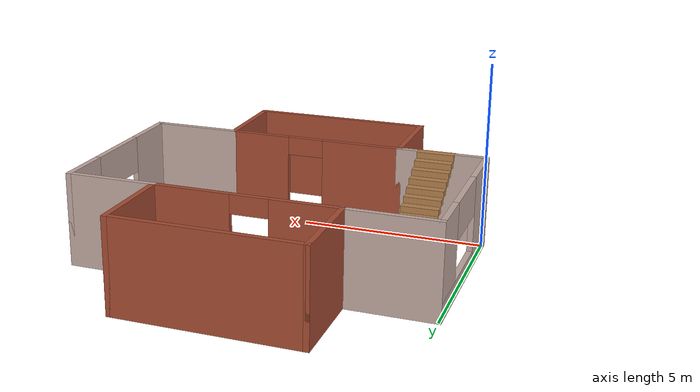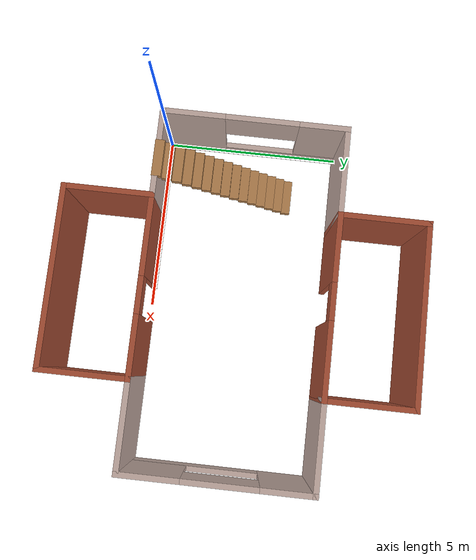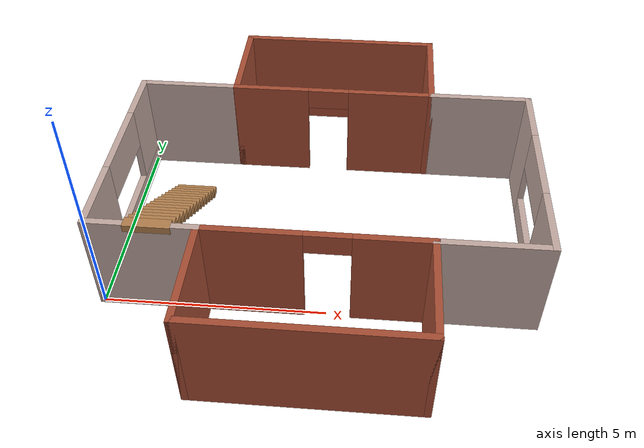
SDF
<?xml version='1.0'?>
<sdf version='1.6'>
  <model name='Building'>
    <pose frame=''>4.775 2.5 0 0 -0 0</pose>
    <link name='Stairs_0'>
      <visual name='Stairs_0_Visual_0'>
        <pose frame=''>-3.44318 1.16428 0.083333 0 -0 0</pose>
        <geometry>
          <box>
            <size>1 0.259131 0.166667</size>
          </box>
        </geometry>
        <material>
          <script>
            <uri>file://media/materials/scripts/gazebo.material</uri>
            <name>Gazebo/Wood</name>
          </script>
          <ambient>1 1 1 1</ambient>
        </material>
        <meta>
          <layer>0</layer>
        </meta>
      </visual>
      <collision name='Stairs_0_Collision_0'>
        <geometry>
          <box>
            <size>1 0.259131 0.166667</size>
          </box>
        </geometry>
        <pose frame=''>-3.44318 1.16428 0.083333 0 -0 0</pose>
      </collision>
      <visual name='Stairs_0_Visual_1'>
        <pose frame=''>-3.44318 0.905145 0.25 0 -0 0</pose>
        <geometry>
          <box>
            <size>1 0.259131 0.166667</size>
          </box>
        </geometry>
        <material>
          <script>
            <uri>file://media/materials/scripts/gazebo.material</uri>
            <name>Gazebo/Wood</name>
          </script>
          <ambient>1 1 1 1</ambient>
        </material>
        <meta>
          <layer>0</layer>
        </meta>
      </visual>
      <collision name='Stairs_0_Collision_1'>
        <geometry>
          <box>
            <size>1 0.259131 0.166667</size>
          </box>
        </geometry>
        <pose frame=''>-3.44318 0.905145 0.25 0 -0 0</pose>
      </collision>
      <visual name='Stairs_0_Visual_2'>
        <pose frame=''>-3.44318 0.646014 0.416667 0 -0 0</pose>
        <geometry>
          <box>
            <size>1 0.259131 0.166667</size>
          </box>
        </geometry>
        <material>
          <script>
            <uri>file://media/materials/scripts/gazebo.material</uri>
            <name>Gazebo/Wood</name>
          </script>
          <ambient>1 1 1 1</ambient>
        </material>
        <meta>
          <layer>0</layer>
        </meta>
      </visual>
      <collision name='Stairs_0_Collision_2'>
        <geometry>
          <box>
            <size>1 0.259131 0.166667</size>
          </box>
        </geometry>
        <pose frame=''>-3.44318 0.646014 0.416667 0 -0 0</pose>
      </collision>
      <visual name='Stairs_0_Visual_3'>
        <pose frame=''>-3.44318 0.386883 0.583333 0 -0 0</pose>
        <geometry>
          <box>
            <size>1 0.259131 0.166667</size>
          </box>
        </geometry>
        <material>
          <script>
            <uri>file://media/materials/scripts/gazebo.material</uri>
            <name>Gazebo/Wood</name>
          </script>
          <ambient>1 1 1 1</ambient>
        </material>
        <meta>
          <layer>0</layer>
        </meta>
      </visual>
      <collision name='Stairs_0_Collision_3'>
        <geometry>
          <box>
            <size>1 0.259131 0.166667</size>
          </box>
        </geometry>
        <pose frame=''>-3.44318 0.386883 0.583333 0 -0 0</pose>
      </collision>
      <visual name='Stairs_0_Visual_4'>
        <pose frame=''>-3.44318 0.127752 0.75 0 -0 0</pose>
        <geometry>
          <box>
            <size>1 0.259131 0.166667</size>
          </box>
        </geometry>
        <material>
          <script>
            <uri>file://media/materials/scripts/gazebo.material</uri>
            <name>Gazebo/Wood</name>
          </script>
          <ambient>1 1 1 1</ambient>
        </material>
        <meta>
          <layer>0</layer>
        </meta>
      </visual>
      <collision name='Stairs_0_Collision_4'>
        <geometry>
          <box>
            <size>1 0.259131 0.166667</size>
          </box>
        </geometry>
        <pose frame=''>-3.44318 0.127752 0.75 0 -0 0</pose>
      </collision>
      <visual name='Stairs_0_Visual_5'>
        <pose frame=''>-3.44318 -0.131379 0.916667 0 -0 0</pose>
        <geometry>
          <box>
            <size>1 0.259131 0.166667</size>
          </box>
        </geometry>
        <material>
          <script>
            <uri>file://media/materials/scripts/gazebo.material</uri>
            <name>Gazebo/Wood</name>
          </script>
          <ambient>1 1 1 1</ambient>
        </material>
        <meta>
          <layer>0</layer>
        </meta>
      </visual>
      <collision name='Stairs_0_Collision_5'>
        <geometry>
          <box>
            <size>1 0.259131 0.166667</size>
          </box>
        </geometry>
        <pose frame=''>-3.44318 -0.131379 0.916667 0 -0 0</pose>
      </collision>
      <visual name='Stairs_0_Visual_6'>
        <pose frame=''>-3.44318 -0.390511 1.08333 0 -0 0</pose>
        <geometry>
          <box>
            <size>1 0.259131 0.166667</size>
          </box>
        </geometry>
        <material>
          <script>
            <uri>file://media/materials/scripts/gazebo.material</uri>
            <name>Gazebo/Wood</name>
          </script>
          <ambient>1 1 1 1</ambient>
        </material>
        <meta>
          <layer>0</layer>
        </meta>
      </visual>
      <collision name='Stairs_0_Collision_6'>
        <geometry>
          <box>
            <size>1 0.259131 0.166667</size>
          </box>
        </geometry>
        <pose frame=''>-3.44318 -0.390511 1.08333 0 -0 0</pose>
      </collision>
      <visual name='Stairs_0_Visual_7'>
        <pose frame=''>-3.44318 -0.649642 1.25 0 -0 0</pose>
        <geometry>
          <box>
            <size>1 0.259131 0.166667</size>
          </box>
        </geometry>
        <material>
          <script>
            <uri>file://media/materials/scripts/gazebo.material</uri>
            <name>Gazebo/Wood</name>
          </script>
          <ambient>1 1 1 1</ambient>
        </material>
        <meta>
          <layer>0</layer>
        </meta>
      </visual>
      <collision name='Stairs_0_Collision_7'>
        <geometry>
          <box>
            <size>1 0.259131 0.166667</size>
          </box>
        </geometry>
        <pose frame=''>-3.44318 -0.649642 1.25 0 -0 0</pose>
      </collision>
      <visual name='Stairs_0_Visual_8'>
        <pose frame=''>-3.44318 -0.908773 1.41667 0 -0 0</pose>
        <geometry>
          <box>
            <size>1 0.259131 0.166667</size>
          </box>
        </geometry>
        <material>
          <script>
            <uri>file://media/materials/scripts/gazebo.material</uri>
            <name>Gazebo/Wood</name>
          </script>
          <ambient>1 1 1 1</ambient>
        </material>
        <meta>
          <layer>0</layer>
        </meta>
      </visual>
      <collision name='Stairs_0_Collision_8'>
        <geometry>
          <box>
            <size>1 0.259131 0.166667</size>
          </box>
        </geometry>
        <pose frame=''>-3.44318 -0.908773 1.41667 0 -0 0</pose>
      </collision>
      <visual name='Stairs_0_Visual_9'>
        <pose frame=''>-3.44318 -1.1679 1.58333 0 -0 0</pose>
        <geometry>
          <box>
            <size>1 0.259131 0.166667</size>
          </box>
        </geometry>
        <material>
          <script>
            <uri>file://media/materials/scripts/gazebo.material</uri>
            <name>Gazebo/Wood</name>
          </script>
          <ambient>1 1 1 1</ambient>
        </material>
        <meta>
          <layer>0</layer>
        </meta>
      </visual>
      <collision name='Stairs_0_Collision_9'>
        <geometry>
          <box>
            <size>1 0.259131 0.166667</size>
          </box>
        </geometry>
        <pose frame=''>-3.44318 -1.1679 1.58333 0 -0 0</pose>
      </collision>
      <visual name='Stairs_0_Visual_10'>
        <pose frame=''>-3.44318 -1.42704 1.75 0 -0 0</pose>
        <geometry>
          <box>
            <size>1 0.259131 0.166667</size>
          </box>
        </geometry>
        <material>
          <script>
            <uri>file://media/materials/scripts/gazebo.material</uri>
            <name>Gazebo/Wood</name>
          </script>
          <ambient>1 1 1 1</ambient>
        </material>
        <meta>
          <layer>0</layer>
        </meta>
      </visual>
      <collision name='Stairs_0_Collision_10'>
        <geometry>
          <box>
            <size>1 0.259131 0.166667</size>
          </box>
        </geometry>
        <pose frame=''>-3.44318 -1.42704 1.75 0 -0 0</pose>
      </collision>
      <visual name='Stairs_0_Visual_11'>
        <pose frame=''>-3.44318 -1.68617 1.91667 0 -0 0</pose>
        <geometry>
          <box>
            <size>1 0.259131 0.166667</size>
          </box>
        </geometry>
        <material>
          <script>
            <uri>file://media/materials/scripts/gazebo.material</uri>
            <name>Gazebo/Wood</name>
          </script>
          <ambient>1 1 1 1</ambient>
        </material>
        <meta>
          <layer>0</layer>
        </meta>
      </visual>
      <collision name='Stairs_0_Collision_11'>
        <geometry>
          <box>
            <size>1 0.259131 0.166667</size>
          </box>
        </geometry>
        <pose frame=''>-3.44318 -1.68617 1.91667 0 -0 0</pose>
      </collision>
      <visual name='Stairs_0_Visual_12'>
        <pose frame=''>-3.44318 -1.9453 2.08333 0 -0 0</pose>
        <geometry>
          <box>
            <size>1 0.259131 0.166667</size>
          </box>
        </geometry>
        <material>
          <script>
            <uri>file://media/materials/scripts/gazebo.material</uri>
            <name>Gazebo/Wood</name>
          </script>
          <ambient>1 1 1 1</ambient>
        </material>
        <meta>
          <layer>0</layer>
        </meta>
      </visual>
      <collision name='Stairs_0_Collision_12'>
        <geometry>
          <box>
            <size>1 0.259131 0.166667</size>
          </box>
        </geometry>
        <pose frame=''>-3.44318 -1.9453 2.08333 0 -0 0</pose>
      </collision>
      <visual name='Stairs_0_Visual_13'>
        <pose frame=''>-3.44318 -2.20443 2.25 0 -0 0</pose>
        <geometry>
          <box>
            <size>1 0.259131 0.166667</size>
          </box>
        </geometry>
        <material>
          <script>
            <uri>file://media/materials/scripts/gazebo.material</uri>
            <name>Gazebo/Wood</name>
          </script>
          <ambient>1 1 1 1</ambient>
        </material>
        <meta>
          <layer>0</layer>
        </meta>
      </visual>
      <collision name='Stairs_0_Collision_13'>
        <geometry>
          <box>
            <size>1 0.259131 0.166667</size>
          </box>
        </geometry>
        <pose frame=''>-3.44318 -2.20443 2.25 0 -0 0</pose>
      </collision>
      <visual name='Stairs_0_Visual_14'>
        <pose frame=''>-3.44318 -2.46356 2.41667 0 -0 0</pose>
        <geometry>
          <box>
            <size>1 0.259131 0.166667</size>
          </box>
        </geometry>
        <material>
          <script>
            <uri>file://media/materials/scripts/gazebo.material</uri>
            <name>Gazebo/Wood</name>
          </script>
          <ambient>1 1 1 1</ambient>
        </material>
        <meta>
          <layer>0</layer>
        </meta>
      </visual>
      <collision name='Stairs_0_Collision_14'>
        <geometry>
          <box>
            <size>1 0.259131 0.166667</size>
          </box>
        </geometry>
        <pose frame=''>-3.44318 -2.46356 2.41667 0 -0 0</pose>
      </collision>
    </link>
    <link name='Wall_10'>
      <collision name='Wall_10_Collision'>
        <geometry>
          <box>
            <size>2.5 0.15 2.5</size>
          </box>
        </geometry>
        <pose frame=''>0 0 1.25 0 -0 0</pose>
      </collision>
      <visual name='Wall_10_Visual'>
        <pose frame=''>0 0 1.25 0 -0 0</pose>
        <geometry>
          <box>
            <size>2.5 0.15 2.5</size>
          </box>
        </geometry>
        <material>
          <script>
            <uri>file://media/materials/scripts/gazebo.material</uri>
            <name>Gazebo/Bricks</name>
          </script>
          <ambient>1 1 1 1</ambient>
        </material>
        <meta>
          <layer>0</layer>
        </meta>
      </visual>
      <pose frame=''>-2.425 3.675 0 0 -0 1.5708</pose>
    </link>
    <link name='Wall_12'>
      <collision name='Wall_12_Collision'>
        <geometry>
          <box>
            <size>5 0.15 2.5</size>
          </box>
        </geometry>
        <pose frame=''>0 0 1.25 0 -0 0</pose>
      </collision>
      <visual name='Wall_12_Visual'>
        <pose frame=''>0 0 1.25 0 -0 0</pose>
        <geometry>
          <box>
            <size>5 0.15 2.5</size>
          </box>
        </geometry>
        <material>
          <script>
            <uri>file://media/materials/scripts/gazebo.material</uri>
            <name>Gazebo/Bricks</name>
          </script>
          <ambient>1 1 1 1</ambient>
        </material>
        <meta>
          <layer>0</layer>
        </meta>
      </visual>
      <pose frame=''>0 4.85 0 0 -0 0</pose>
    </link>
    <link name='Wall_14'>
      <collision name='Wall_14_Collision'>
        <geometry>
          <box>
            <size>2.5 0.15 2.5</size>
          </box>
        </geometry>
        <pose frame=''>0 0 1.25 0 -0 0</pose>
      </collision>
      <visual name='Wall_14_Visual'>
        <pose frame=''>0 0 1.25 0 -0 0</pose>
        <geometry>
          <box>
            <size>2.5 0.15 2.5</size>
          </box>
        </geometry>
        <material>
          <script>
            <uri>file://media/materials/scripts/gazebo.material</uri>
            <name>Gazebo/Bricks</name>
          </script>
          <ambient>1 1 1 1</ambient>
        </material>
        <meta>
          <layer>0</layer>
        </meta>
      </visual>
      <pose frame=''>2.425 3.675 0 0 0 -1.5708</pose>
    </link>
    <link name='Wall_15'>
      <collision name='Wall_15_Collision'>
        <geometry>
          <box>
            <size>2.5 0.15 2.5</size>
          </box>
        </geometry>
        <pose frame=''>0 0 1.25 0 -0 0</pose>
      </collision>
      <visual name='Wall_15_Visual'>
        <pose frame=''>0 0 1.25 0 -0 0</pose>
        <geometry>
          <box>
            <size>2.5 0.15 2.5</size>
          </box>
        </geometry>
        <material>
          <script>
            <uri>file://media/materials/scripts/gazebo.material</uri>
            <name>Gazebo/Grey</name>
          </script>
          <ambient>0.760784 0.662745 0.627451 1</ambient>
        </material>
        <meta>
          <layer>0</layer>
        </meta>
      </visual>
      <pose frame=''>3.6 2.5 0 0 -0 0</pose>
    </link>
    <link name='Wall_16'>
      <pose frame=''>4.775 0 0 0 0 -1.5708</pose>
      <visual name='Wall_16_Visual_0'>
        <pose frame=''>-1.8385 0 1.25 0 -0 0</pose>
        <geometry>
          <box>
            <size>1.473 0.15 2.5</size>
          </box>
        </geometry>
        <material>
          <script>
            <uri>file://media/materials/scripts/gazebo.material</uri>
            <name>Gazebo/Grey</name>
          </script>
          <ambient>0.760784 0.662745 0.627451 1</ambient>
        </material>
        <meta>
          <layer>0</layer>
        </meta>
      </visual>
      <collision name='Wall_16_Collision_0'>
        <geometry>
          <box>
            <size>1.473 0.15 2.5</size>
          </box>
        </geometry>
        <pose frame=''>-1.8385 0 1.25 0 -0 0</pose>
      </collision>
      <visual name='Wall_16_Visual_1'>
        <pose frame=''>0.7365 0 0.25 0 -0 0</pose>
        <geometry>
          <box>
            <size>3.677 0.15 0.5</size>
          </box>
        </geometry>
        <material>
          <script>
            <uri>file://media/materials/scripts/gazebo.material</uri>
            <name>Gazebo/Grey</name>
          </script>
          <ambient>0.760784 0.662745 0.627451 1</ambient>
        </material>
        <meta>
          <layer>0</layer>
        </meta>
      </visual>
      <collision name='Wall_16_Collision_1'>
        <geometry>
          <box>
            <size>3.677 0.15 0.5</size>
          </box>
        </geometry>
        <pose frame=''>0.7365 0 0.25 0 -0 0</pose>
      </collision>
      <visual name='Wall_16_Visual_2'>
        <pose frame=''>1.7365 0 1.5 0 -0 0</pose>
        <geometry>
          <box>
            <size>1.677 0.15 2</size>
          </box>
        </geometry>
        <material>
          <script>
            <uri>file://media/materials/scripts/gazebo.material</uri>
            <name>Gazebo/Grey</name>
          </script>
          <ambient>0.760784 0.662745 0.627451 1</ambient>
        </material>
        <meta>
          <layer>0</layer>
        </meta>
      </visual>
      <collision name='Wall_16_Collision_2'>
        <geometry>
          <box>
            <size>1.677 0.15 2</size>
          </box>
        </geometry>
        <pose frame=''>1.7365 0 1.5 0 -0 0</pose>
      </collision>
      <visual name='Wall_16_Visual_3'>
        <pose frame=''>-0.102 0 2 0 -0 0</pose>
        <geometry>
          <box>
            <size>2 0.15 1</size>
          </box>
        </geometry>
        <material>
          <script>
            <uri>file://media/materials/scripts/gazebo.material</uri>
            <name>Gazebo/Grey</name>
          </script>
          <ambient>0.760784 0.662745 0.627451 1</ambient>
        </material>
        <meta>
          <layer>0</layer>
        </meta>
      </visual>
      <collision name='Wall_16_Collision_3'>
        <geometry>
          <box>
            <size>2 0.15 1</size>
          </box>
        </geometry>
        <pose frame=''>-0.102 0 2 0 -0 0</pose>
      </collision>
    </link>
    <link name='Wall_18'>
      <collision name='Wall_18_Collision'>
        <geometry>
          <box>
            <size>2.5 0.15 2.5</size>
          </box>
        </geometry>
        <pose frame=''>0 0 1.25 0 -0 0</pose>
      </collision>
      <visual name='Wall_18_Visual'>
        <pose frame=''>0 0 1.25 0 -0 0</pose>
        <geometry>
          <box>
            <size>2.5 0.15 2.5</size>
          </box>
        </geometry>
        <material>
          <script>
            <uri>file://media/materials/scripts/gazebo.material</uri>
            <name>Gazebo/Grey</name>
          </script>
          <ambient>0.760784 0.662745 0.627451 1</ambient>
        </material>
        <meta>
          <layer>0</layer>
        </meta>
      </visual>
      <pose frame=''>-3.6 -2.5 0 0 -0 0</pose>
    </link>
    <link name='Wall_22'>
      <collision name='Wall_22_Collision'>
        <geometry>
          <box>
            <size>2.5 0.15 2.5</size>
          </box>
        </geometry>
        <pose frame=''>0 0 1.25 0 -0 0</pose>
      </collision>
      <visual name='Wall_22_Visual'>
        <pose frame=''>0 0 1.25 0 -0 0</pose>
        <geometry>
          <box>
            <size>2.5 0.15 2.5</size>
          </box>
        </geometry>
        <material>
          <script>
            <uri>file://media/materials/scripts/gazebo.material</uri>
            <name>Gazebo/Bricks</name>
          </script>
          <ambient>1 1 1 1</ambient>
        </material>
        <meta>
          <layer>0</layer>
        </meta>
      </visual>
      <pose frame=''>-2.425 -3.675 0 0 0 -1.5708</pose>
    </link>
    <link name='Wall_23'>
      <collision name='Wall_23_Collision'>
        <geometry>
          <box>
            <size>5 0.15 2.5</size>
          </box>
        </geometry>
        <pose frame=''>0 0 1.25 0 -0 0</pose>
      </collision>
      <visual name='Wall_23_Visual'>
        <pose frame=''>0 0 1.25 0 -0 0</pose>
        <geometry>
          <box>
            <size>5 0.15 2.5</size>
          </box>
        </geometry>
        <material>
          <script>
            <uri>file://media/materials/scripts/gazebo.material</uri>
            <name>Gazebo/Bricks</name>
          </script>
          <ambient>1 1 1 1</ambient>
        </material>
        <meta>
          <layer>0</layer>
        </meta>
      </visual>
      <pose frame=''>0 -4.85 0 0 -0 0</pose>
    </link>
    <link name='Wall_26'>
      <pose frame=''>0 2.5 0 0 -0 0</pose>
      <visual name='Wall_26_Visual_0'>
        <pose frame=''>-1.5607 0 1.25 0 -0 0</pose>
        <geometry>
          <box>
            <size>1.8786 0.15 2.5</size>
          </box>
        </geometry>
        <material>
          <script>
            <uri>file://media/materials/scripts/gazebo.material</uri>
            <name>Gazebo/Bricks</name>
          </script>
          <ambient>1 1 1 1</ambient>
        </material>
        <meta>
          <layer>0</layer>
        </meta>
      </visual>
      <collision name='Wall_26_Collision_0'>
        <geometry>
          <box>
            <size>1.8786 0.15 2.5</size>
          </box>
        </geometry>
        <pose frame=''>-1.5607 0 1.25 0 -0 0</pose>
      </collision>
      <visual name='Wall_26_Visual_1'>
        <pose frame=''>1.4393 0 1.25 0 -0 0</pose>
        <geometry>
          <box>
            <size>2.1214 0.15 2.5</size>
          </box>
        </geometry>
        <material>
          <script>
            <uri>file://media/materials/scripts/gazebo.material</uri>
            <name>Gazebo/Bricks</name>
          </script>
          <ambient>1 1 1 1</ambient>
        </material>
        <meta>
          <layer>0</layer>
        </meta>
      </visual>
      <collision name='Wall_26_Collision_1'>
        <geometry>
          <box>
            <size>2.1214 0.15 2.5</size>
          </box>
        </geometry>
        <pose frame=''>1.4393 0 1.25 0 -0 0</pose>
      </collision>
      <visual name='Wall_26_Visual_2'>
        <pose frame=''>-0.1214 0 2.25 0 -0 0</pose>
        <geometry>
          <box>
            <size>1 0.15 0.5</size>
          </box>
        </geometry>
        <material>
          <script>
            <uri>file://media/materials/scripts/gazebo.material</uri>
            <name>Gazebo/Bricks</name>
          </script>
          <ambient>1 1 1 1</ambient>
        </material>
        <meta>
          <layer>0</layer>
        </meta>
      </visual>
      <collision name='Wall_26_Collision_2'>
        <geometry>
          <box>
            <size>1 0.15 0.5</size>
          </box>
        </geometry>
        <pose frame=''>-0.1214 0 2.25 0 -0 0</pose>
      </collision>
    </link>
    <link name='Wall_29'>
      <collision name='Wall_29_Collision'>
        <geometry>
          <box>
            <size>2.5 0.15 2.5</size>
          </box>
        </geometry>
        <pose frame=''>0 0 1.25 0 -0 0</pose>
      </collision>
      <visual name='Wall_29_Visual'>
        <pose frame=''>0 0 1.25 0 -0 0</pose>
        <geometry>
          <box>
            <size>2.5 0.15 2.5</size>
          </box>
        </geometry>
        <material>
          <script>
            <uri>file://media/materials/scripts/gazebo.material</uri>
            <name>Gazebo/Grey</name>
          </script>
          <ambient>0.760784 0.662745 0.627451 1</ambient>
        </material>
        <meta>
          <layer>0</layer>
        </meta>
      </visual>
      <pose frame=''>3.6 -2.5 0 0 -0 3.14159</pose>
    </link>
    <link name='Wall_30'>
      <collision name='Wall_30_Collision'>
        <geometry>
          <box>
            <size>2.5 0.15 2.5</size>
          </box>
        </geometry>
        <pose frame=''>0 0 1.25 0 -0 0</pose>
      </collision>
      <visual name='Wall_30_Visual'>
        <pose frame=''>0 0 1.25 0 -0 0</pose>
        <geometry>
          <box>
            <size>2.5 0.15 2.5</size>
          </box>
        </geometry>
        <material>
          <script>
            <uri>file://media/materials/scripts/gazebo.material</uri>
            <name>Gazebo/Bricks</name>
          </script>
          <ambient>0.435294 0.796078 0.67451 1</ambient>
        </material>
        <meta>
          <layer>0</layer>
        </meta>
      </visual>
      <pose frame=''>2.425 -3.675 0 0 0 -1.5708</pose>
    </link>
    <link name='Wall_32'>
      <pose frame=''>0 -2.5 0 0 -0 0</pose>
      <visual name='Wall_32_Visual_0'>
        <pose frame=''>-1.374 0 1.25 0 -0 0</pose>
        <geometry>
          <box>
            <size>2.252 0.15 2.5</size>
          </box>
        </geometry>
        <material>
          <script>
            <uri>file://media/materials/scripts/gazebo.material</uri>
            <name>Gazebo/Bricks</name>
          </script>
          <ambient>0.435294 0.796078 0.67451 1</ambient>
        </material>
        <meta>
          <layer>0</layer>
        </meta>
      </visual>
      <collision name='Wall_32_Collision_0'>
        <geometry>
          <box>
            <size>2.252 0.15 2.5</size>
          </box>
        </geometry>
        <pose frame=''>-1.374 0 1.25 0 -0 0</pose>
      </collision>
      <visual name='Wall_32_Visual_1'>
        <pose frame=''>1.626 0 1.25 0 -0 0</pose>
        <geometry>
          <box>
            <size>1.748 0.15 2.5</size>
          </box>
        </geometry>
        <material>
          <script>
            <uri>file://media/materials/scripts/gazebo.material</uri>
            <name>Gazebo/Bricks</name>
          </script>
          <ambient>0.435294 0.796078 0.67451 1</ambient>
        </material>
        <meta>
          <layer>0</layer>
        </meta>
      </visual>
      <collision name='Wall_32_Collision_1'>
        <geometry>
          <box>
            <size>1.748 0.15 2.5</size>
          </box>
        </geometry>
        <pose frame=''>1.626 0 1.25 0 -0 0</pose>
      </collision>
      <visual name='Wall_32_Visual_2'>
        <pose frame=''>0.252 0 2.25 0 -0 0</pose>
        <geometry>
          <box>
            <size>1 0.15 0.5</size>
          </box>
        </geometry>
        <material>
          <script>
            <uri>file://media/materials/scripts/gazebo.material</uri>
            <name>Gazebo/Bricks</name>
          </script>
          <ambient>0.435294 0.796078 0.67451 1</ambient>
        </material>
        <meta>
          <layer>0</layer>
        </meta>
      </visual>
      <collision name='Wall_32_Collision_2'>
        <geometry>
          <box>
            <size>1 0.15 0.5</size>
          </box>
        </geometry>
        <pose frame=''>0.252 0 2.25 0 -0 0</pose>
      </collision>
    </link>
    <link name='Wall_4'>
      <pose frame=''>-4.775 0 0 0 -0 1.5708</pose>
      <visual name='Wall_4_Visual_0'>
        <pose frame=''>-1.6905 0 1.25 0 -0 0</pose>
        <geometry>
          <box>
            <size>1.769 0.15 2.5</size>
          </box>
        </geometry>
        <material>
          <script>
            <uri>file://media/materials/scripts/gazebo.material</uri>
            <name>Gazebo/Grey</name>
          </script>
          <ambient>0.760784 0.662745 0.627451 1</ambient>
        </material>
        <meta>
          <layer>0</layer>
        </meta>
      </visual>
      <collision name='Wall_4_Collision_0'>
        <geometry>
          <box>
            <size>1.769 0.15 2.5</size>
          </box>
        </geometry>
        <pose frame=''>-1.6905 0 1.25 0 -0 0</pose>
      </collision>
      <visual name='Wall_4_Visual_1'>
        <pose frame=''>0.8845 0 0.25 0 -0 0</pose>
        <geometry>
          <box>
            <size>3.381 0.15 0.5</size>
          </box>
        </geometry>
        <material>
          <script>
            <uri>file://media/materials/scripts/gazebo.material</uri>
            <name>Gazebo/Grey</name>
          </script>
          <ambient>0.760784 0.662745 0.627451 1</ambient>
        </material>
        <meta>
          <layer>0</layer>
        </meta>
      </visual>
      <collision name='Wall_4_Collision_1'>
        <geometry>
          <box>
            <size>3.381 0.15 0.5</size>
          </box>
        </geometry>
        <pose frame=''>0.8845 0 0.25 0 -0 0</pose>
      </collision>
      <visual name='Wall_4_Visual_2'>
        <pose frame=''>1.8845 0 1.5 0 -0 0</pose>
        <geometry>
          <box>
            <size>1.381 0.15 2</size>
          </box>
        </geometry>
        <material>
          <script>
            <uri>file://media/materials/scripts/gazebo.material</uri>
            <name>Gazebo/Grey</name>
          </script>
          <ambient>0.760784 0.662745 0.627451 1</ambient>
        </material>
        <meta>
          <layer>0</layer>
        </meta>
      </visual>
      <collision name='Wall_4_Collision_2'>
        <geometry>
          <box>
            <size>1.381 0.15 2</size>
          </box>
        </geometry>
        <pose frame=''>1.8845 0 1.5 0 -0 0</pose>
      </collision>
      <visual name='Wall_4_Visual_3'>
        <pose frame=''>0.194 0 2 0 -0 0</pose>
        <geometry>
          <box>
            <size>2 0.15 1</size>
          </box>
        </geometry>
        <material>
          <script>
            <uri>file://media/materials/scripts/gazebo.material</uri>
            <name>Gazebo/Grey</name>
          </script>
          <ambient>0.760784 0.662745 0.627451 1</ambient>
        </material>
        <meta>
          <layer>0</layer>
        </meta>
      </visual>
      <collision name='Wall_4_Collision_3'>
        <geometry>
          <box>
            <size>2 0.15 1</size>
          </box>
        </geometry>
        <pose frame=''>0.194 0 2 0 -0 0</pose>
      </collision>
    </link>
    <link name='Wall_8'>
      <collision name='Wall_8_Collision'>
        <geometry>
          <box>
            <size>2.5 0.15 2.5</size>
          </box>
        </geometry>
        <pose frame=''>0 0 1.25 0 -0 0</pose>
      </collision>
      <visual name='Wall_8_Visual'>
        <pose frame=''>0 0 1.25 0 -0 0</pose>
        <geometry>
          <box>
            <size>2.5 0.15 2.5</size>
          </box>
        </geometry>
        <material>
          <script>
            <uri>file://media/materials/scripts/gazebo.material</uri>
            <name>Gazebo/Grey</name>
          </script>
          <ambient>0.760784 0.662745 0.627451 1</ambient>
        </material>
        <meta>
          <layer>0</layer>
        </meta>
      </visual>
      <pose frame=''>-3.6 2.5 0 0 -0 0</pose>
    </link>
    <static>1</static>
  </model>
</sdf>
